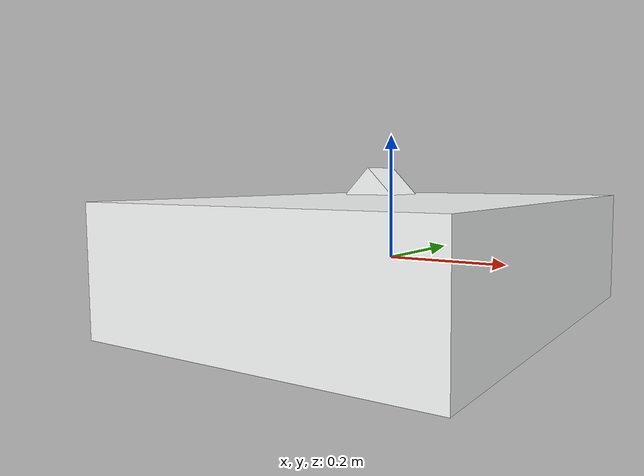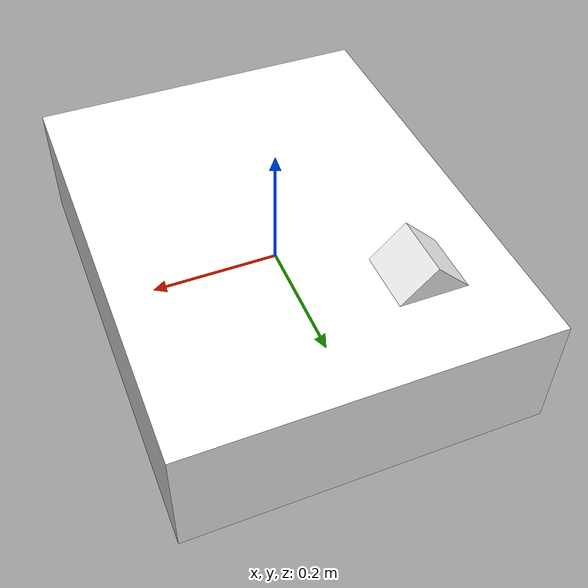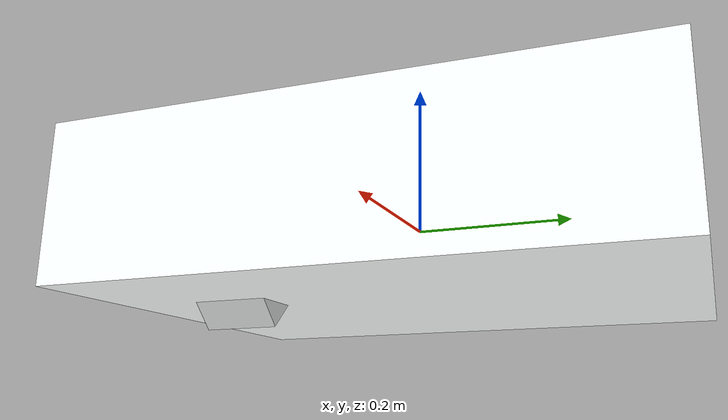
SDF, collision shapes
<sdf version='1.11'>
  <model name='kujagra_sim'>
    <link name='base_link'>
      <inertial>
        <pose>-0.018382152997411201 0.016960544864329598 0.0314070021340392 0 0 0</pose>
        <mass>78.46869</mass>
        <inertia>
          <ixx>5.6152303161666</ixx>
          <ixy>0</ixy>
          <ixz>0</ixz>
          <iyy>3.68988741408286</iyy>
          <iyz>0</iyz>
          <izz>5.8049364461399</izz>
        </inertia>
      </inertial>
      <collision name='base_link_collision'>
        <pose>0 0 0 0 0 0</pose>
        <geometry>

          <box>
            <size> 0.5593371987342834 0.71736592648925781 0.19556337222456932 </size>
          </box>

        </geometry>
      </collision>
      <visual name='base_link_visual'>
        <pose>0 0 0 0 0 0</pose>
        <geometry>

          <mesh>
            <scale>1 1 1</scale>
            <uri>model://meshes/base_link.STL</uri>
          </mesh>
        </geometry>
        <material>
          <diffuse>0.990196109 1 1 1</diffuse>
          <ambient>0.990196109 1 1 1</ambient>
        </material>
      </visual>
    </link>

    <!-- Hydrodynamics plugin -->
    <plugin
        filename="gz-sim-hydrodynamics-system"
        name="gz::sim::systems::Hydrodynamics">
      <link_name>base_link</link_name>
      <water_density>1000</water_density>
      <!-- Added mass: -->
      <xDotU>0</xDotU>
      <yDotV>0</yDotV>
      <zDotW>0</zDotW>
      <kDotP>0</kDotP>
      <mDotQ>0</mDotQ>
      <nDotR>0</nDotR>
      <!-- First order stability derivative: -->
      <xU>-74.82</xU>
      <yV>-69.48</yV>
      <zW>-728.4</zW>
      <kP>-268.8</kP>
      <mQ>-309.77 </mQ>
      <nR>-105</nR>
      <!-- Second order stability derivative: -->
      <xUabsU>-748.22</xUabsU>
      <yVabsV>-992.53</yVabsV>
      <zWabsW>-1821.01</zWabsW>
      <kPabsP>-672</kPabsP>
      <mQabsQ>-774.44</mQabsQ>
      <nRabsR>-523.27</nRabsR>
    </plugin>

    <joint name='blthruster_joint' type='revolute'>
      <pose relative_to='base_link'>0.17280000000000001 0.19450999999999999 0.0022515999999999999 0.78538999999999992 0.00011812999999990391 1.5707</pose>
      <parent>base_link</parent>
      <child>blthruster_link</child>
      <axis>
        <xyz>0 0 -1</xyz>
        <limit>
          <lower>-inf</lower>
          <upper>inf</upper>
        </limit>
        <dynamics>
          <spring_reference>0</spring_reference>
          <spring_stiffness>0</spring_stiffness>
        </dynamics>
      </axis>
    </joint>
    <link name='blthruster_link'>
      <pose relative_to='blthruster_joint'>0 0 0 0 0 0</pose>
      <inertial>
        <pose>-6.3113000000000004e-05 0.00014218999999999999 -0.00029144000000000002 0 0 0</pose>
        <mass>1.059</mass>
        <inertia>
          <ixx>100000000</ixx>
          <ixy>0</ixy>
          <ixz>0</ixz>
          <iyy>100000000</iyy>
          <iyz>0</iyz>
          <izz>100000000</izz>
        </inertia>
      </inertial>
      <collision name='blthruster_link_collision'>
        <pose>0 0 0 0 0 0</pose>
        <geometry>
          <box>
            <size> 0.096584 0.097292 0.112679 </size>
          </box>
        </geometry>
      </collision>
      <visual name='blthruster_link_visual'>
        <pose>0 0 0 0 0 0</pose>
        <geometry>
          <mesh>
            <scale>1 1 1</scale>
            <uri>model://meshes/le bk.STL</uri>
          </mesh>
        </geometry>
        <material>
          <diffuse>0.990199983 1 1 1</diffuse>
          <ambient>0.990199983 1 1 1</ambient>
        </material>
      </visual>
    </link>
    <joint name='brthruster_joint' type='revolute'>
      <pose relative_to='base_link'>-0.13413 0.19247 0.076563000000000006 0.7854000000000001 -0.00011821000000006567 -1.5707</pose>
      <parent>base_link</parent>
      <child>brthruster_link</child>
      <axis>
        <xyz>0 0 1</xyz>
        <limit>
          <lower>-inf</lower>
          <upper>inf</upper>
        </limit>
        <dynamics>
          <spring_reference>0</spring_reference>
          <spring_stiffness>0</spring_stiffness>
        </dynamics>
      </axis>
    </joint>
    <link name='brthruster_link'>
      <pose relative_to='brthruster_joint'>0 0 0 0 0 0</pose>
      <inertial>
        <pose>-6.3112000000000002e-05 -0.10495 -0.00029144000000000002 0 0 0</pose>
        <mass>1.059</mass>
        <inertia>
          <ixx>100000000</ixx>
          <ixy>0</ixy>
          <ixz>0</ixz>
          <iyy>100000000</iyy>
          <iyz>0</iyz>
          <izz>100000000</izz>
        </inertia>
      </inertial>
      <collision name='brthruster_link_collision'>
        <pose>0 0 0 0 0 0</pose>
        <geometry>
          <box>
            <size> 0.096584 0.097292 0.112679 </size>
          </box>
        </geometry>
      </collision>
      <visual name='brthruster_link_visual'>
        <pose>0 0 0 0 0 0</pose>
        <geometry>
          <mesh>
            <scale>1 1 1</scale>
            <uri>model://meshes/ri bk.STL</uri>
          </mesh>
        </geometry>
        <material>
          <diffuse>0.990199983 1 1 1</diffuse>
          <ambient>0.990199983 1 1 1</ambient>
        </material>
      </visual>
    </link>
    <joint name='flthruster_joint' type='revolute'>
      <pose relative_to='base_link'>0.085049 -0.20755999999999999 -0.054761999999999998 -2.3561999999999999 -0.00011813999999990579 -1.5707</pose>
      <parent>base_link</parent>
      <child>flthruster_link</child>
      <axis>
        <xyz>0 0 -1</xyz>
        <limit>
          <lower>-inf</lower>
          <upper>inf</upper>
        </limit>
        <dynamics>
          <spring_reference>0</spring_reference>
          <spring_stiffness>0</spring_stiffness>
        </dynamics>
      </axis>
    </joint>
    <link name='flthruster_link'>
      <pose relative_to='flthruster_joint'>0 0 0 0 0 0</pose>
      <inertial>
        <pose>-6.3112000000000002e-05 -0.10495 0.018709 0 0 0</pose>
        <mass>1.059</mass>
        <inertia>
          <ixx>100000000</ixx>
          <ixy>0</ixy>
          <ixz>0</ixz>
          <iyy>100000000</iyy>
          <iyz>0</iyz>
          <izz>100000000</izz>
        </inertia>
      </inertial>
      <collision name='flthruster_link_collision'>
        <pose>0 0 0 0 0 0</pose>
        <geometry>
          <box>
            <size> 0.096584 0.097292 0.112679 </size>
          </box>
        </geometry>
      </collision>
      <visual name='flthruster_link_visual'>
        <pose>0 0 0 0 0 0</pose>
        <geometry>
          <mesh>
            <scale>1 1 1</scale>
            <uri>model://meshes/le ft.STL</uri>
          </mesh>
        </geometry>
        <material>
          <diffuse>0.990199983 1 1 1</diffuse>
          <ambient>0.990199983 1 1 1</ambient>
        </material>
      </visual>
    </link>
    <joint name='frthruster_joint' type='revolute'>
      <pose relative_to='base_link'>-0.19500999999999999 -0.20548 0.019549 -2.3561999999999999 0.00011805999999993166 1.5707</pose>
      <parent>base_link</parent>
      <child>frthruster_link</child>
      <axis>
        <xyz>0 0 -1</xyz>
        <limit>
          <lower>-inf</lower>
          <upper>inf</upper>
        </limit>
        <dynamics>
          <spring_reference>0</spring_reference>
          <spring_stiffness>0</spring_stiffness>
        </dynamics>
      </axis>
    </joint>
    <link name='frthruster_link'>
      <pose relative_to='frthruster_joint'>0 0 0 0 0 0</pose>
      <inertial>
        <pose>-6.3113000000000004e-05 0.00014218999999999999 0.018709 0 0 0</pose>
        <mass>1.059</mass>
        <inertia>
          <ixx>100000000</ixx>
          <ixy>0</ixy>
          <ixz>0</ixz>
          <iyy>100000000</iyy>
          <iyz>0</iyz>
          <izz>100000000</izz>
        </inertia>
      </inertial>
      <collision name='frthruster_link_collision'>
        <pose>0 0 0 0 0 0</pose>
        <geometry>
          <box>
            <size> 0.096584 0.097292 0.112679 </size>
          </box>
        </geometry>
      </collision>
      <visual name='frthruster_link_visual'>
        <pose>0 0 0 0 0 0</pose>
        <geometry>
          <mesh>
            <scale>1 1 1</scale>
            <uri>model://meshes/ri ft.STL</uri>
          </mesh>
        </geometry>
        <material>
          <diffuse>0.990199983 1 1 1</diffuse>
          <ambient>0.990199983 1 1 1</ambient>
        </material>
      </visual>
    </link>
    <joint name='slthruster_joint' type='revolute'>
      <pose relative_to='base_link'>0.15047481133718901 -0.0060208560618492998 0 -1.5705600591664299 -3.2662263898563071e-32 -3.14159265358979</pose>
      <parent>base_link</parent>
      <child>slthruster_link</child>
      <axis>
        <xyz>0 0 -1</xyz>
        <limit>
          <lower>-inf</lower>
          <upper>inf</upper>
        </limit>
        <dynamics>
          <spring_reference>0</spring_reference>
          <spring_stiffness>0</spring_stiffness>
        </dynamics>
      </axis>
    </joint>
    <link name='slthruster_link'>
      <pose relative_to='slthruster_joint'>0 0 0 0 0 0</pose>
      <inertial>
        <pose>-4.7221000000000001e-05 -0.0056338999999999998 -0.00029170999999999998 0 0 0</pose>
        <mass>1.059</mass>
        <inertia>
          <ixx>100000000</ixx>
          <ixy>0</ixy>
          <ixz>0</ixz>
          <iyy>100000000</iyy>
          <iyz>0</iyz>
          <izz>100000000</izz>
        </inertia>
      </inertial>
      <collision name='slthruster_link_collision'>
        <pose>0 0 0 0 0 0</pose>
        <geometry>
          <box>
            <size> 0.096584 0.097292 0.112679 </size>
          </box>
        </geometry>
      </collision>
      <visual name='slthruster_link_visual'>
        <pose>0 0 0 0 0 0</pose>
        <geometry>
          <mesh>
            <scale>1 1 1</scale>
            <uri>model://meshes/le md.STL</uri>
          </mesh>
        </geometry>
        <material>
          <diffuse>0.990199983 1 1 1</diffuse>
          <ambient>0.990199983 1 1 1</ambient>
        </material>
      </visual>
    </link>
    <joint name='srthruster_joint' type='revolute'>
      <pose relative_to='base_link'>-0.18612999999999999 -0.0060134000000000003 0 -1.5706 3.7221006555592136e-22 -3.1415853071795872</pose>
      <parent>base_link</parent>
      <child>srthruster_link</child>
      <axis>
        <xyz>0 0 -1</xyz>
        <limit>
          <lower>-inf</lower>
          <upper>inf</upper>
        </limit>
        <dynamics>
          <spring_reference>0</spring_reference>
          <spring_stiffness>0</spring_stiffness>
        </dynamics>
      </axis>
    </joint>
    <link name='srthruster_link'>
      <pose relative_to='srthruster_joint'>0 0 0 0 0 0</pose>
      <inertial>
        <pose>-4.7221000000000001e-05 -0.0056324000000000001 -0.00029170999999999998 0 0 0</pose>
        <mass>1.059</mass>
        <inertia>
          <ixx>100000000</ixx>
          <ixy>0</ixy>
          <ixz>0</ixz>
          <iyy>100000000</iyy>
          <iyz>0</iyz>
          <izz>100000000</izz>
        </inertia>
      </inertial>
      <collision name='srthruster_link_collision'>
        <pose>0 0 0 0 0 0</pose>
        <geometry>
          <box>
            <size> 0.096584 0.097292 0.112679 </size>
          </box>
        </geometry>
      </collision>
      <visual name='srthruster_link_visual'>
        <pose>0 0 0 0 0 0</pose>
        <geometry>
          <mesh>
            <scale>1 1 1</scale>
            <uri>model://meshes/ri md.STL</uri>
          </mesh>
        </geometry>
        <material>
          <diffuse>0.990199983 1 1 1</diffuse>
          <ambient>0.990199983 1 1 1</ambient>
        </material>
      </visual>
    </link>

    <plugin
    filename="gz-sim-thruster-system"
    name="gz::sim::systems::Thruster">
      <namespace>kujagra</namespace>
      <joint_name>blthruster_joint</joint_name>
      <thrust_coefficient>0.02</thrust_coefficient>
      <fluid_density>1000</fluid_density>

      <velocity_control>true</velocity_control>
      <use_angvel_cmd>False</use_angvel_cmd>
    </plugin>

    <plugin
        filename="gz-sim-thruster-system"
        name="gz::sim::systems::Thruster">
      <namespace>kujagra</namespace>
      <joint_name>brthruster_joint</joint_name>
      <thrust_coefficient>0.02</thrust_coefficient>
      <fluid_density>1000</fluid_density>

      <velocity_control>true</velocity_control>
      <use_angvel_cmd>False</use_angvel_cmd>
    </plugin>

    <plugin
        filename="gz-sim-thruster-system"
        name="gz::sim::systems::Thruster">
      <namespace>kujagra</namespace>
      <joint_name>flthruster_joint</joint_name>
      <!-- Reverse spin to balance torque -->
      <thrust_coefficient>-0.02</thrust_coefficient>
      <fluid_density>1000</fluid_density>

      <velocity_control>true</velocity_control>
      <use_angvel_cmd>False</use_angvel_cmd>
    </plugin>

    <plugin
        filename="gz-sim-thruster-system"
        name="gz::sim::systems::Thruster">
      <namespace>kujagra</namespace>
      <joint_name>frthruster_joint</joint_name>
      <!-- Reverse spin to balance torque -->
      <thrust_coefficient>-0.02</thrust_coefficient>
      <fluid_density>1000</fluid_density>

      <velocity_control>true</velocity_control>
      <use_angvel_cmd>False</use_angvel_cmd>
    </plugin>

    <plugin
        filename="gz-sim-thruster-system"
        name="gz::sim::systems::Thruster">
      <namespace>kujagra</namespace>
      <joint_name>slthruster_joint</joint_name>
      <thrust_coefficient>0.02</thrust_coefficient>
      <fluid_density>1000</fluid_density>

      <velocity_control>true</velocity_control>
      <use_angvel_cmd>False</use_angvel_cmd>
    </plugin>

    <plugin
        filename="gz-sim-thruster-system"
        name="gz::sim::systems::Thruster">
      <namespace>kujagra</namespace>
      <joint_name>srthruster_joint</joint_name>
      <!-- Reverse spin to balance torque -->
      <thrust_coefficient>-0.02</thrust_coefficient>
      <fluid_density>1000</fluid_density>

      <velocity_control>true</velocity_control>
      <use_angvel_cmd>False</use_angvel_cmd>
    </plugin>

  </model>
</sdf>
